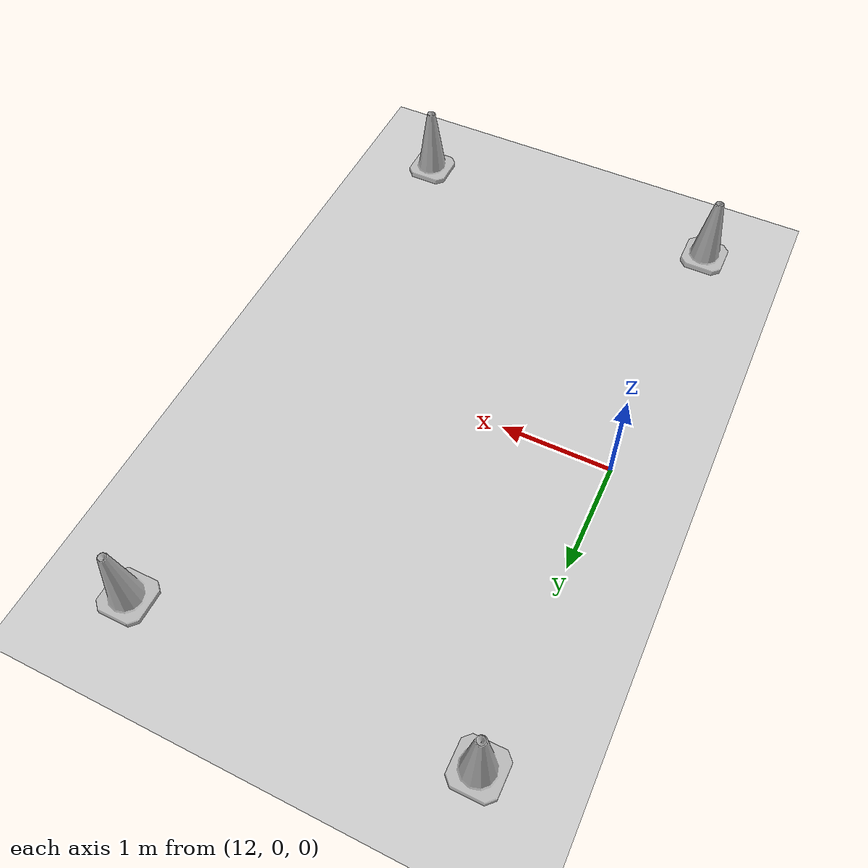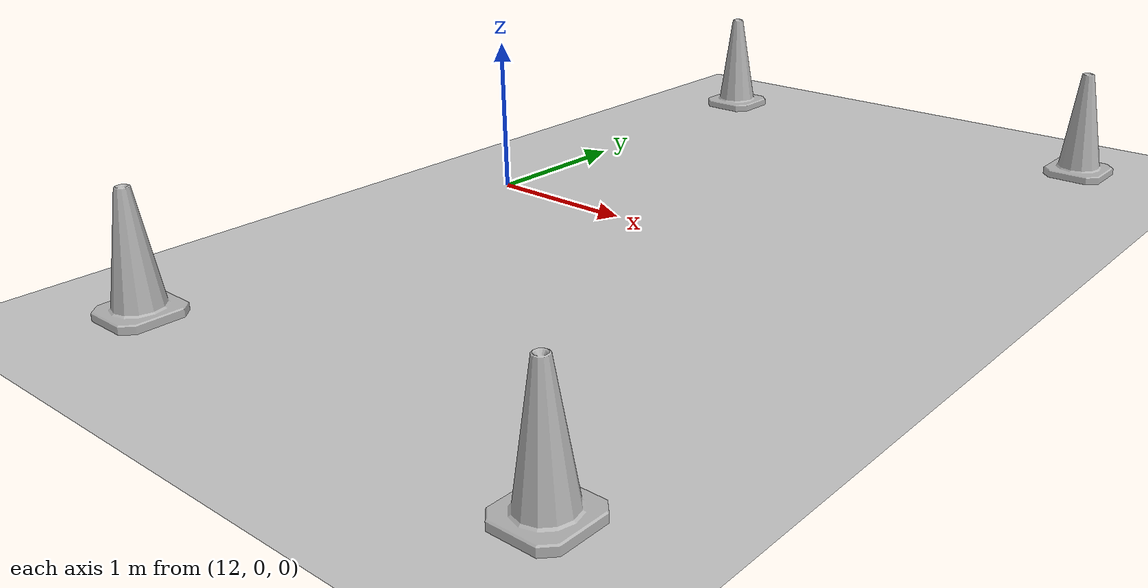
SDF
<sdf version="1.7">
 <world name="default">
  <model name="ground_plane">
   <static>1</static>
   <link name="link">
    <collision name="collision">
     <geometry><plane><normal>0 0 1</normal><size>100 100</size></plane></geometry>
     <surface>
      <contact><collide_bitmask>65535</collide_bitmask></contact>
      <friction><ode><mu>100</mu><mu2>50</mu2></ode></friction>
     </surface>
    </collision>
    <visual name="visual">
     <cast_shadows>0</cast_shadows>
     <geometry><plane><normal>0 0 1</normal><size>100 100</size></plane></geometry>
     <material>
      <script><uri>file://media/materials/scripts/gazebo.material</uri><name>Gazebo/Grey</name></script>
     </material>
    </visual>
   </link>
  </model>
  <model name="Construction_Cone_b_3">
   <link name="link">
    <inertial>
     <inertia><ixx>1</ixx><ixy>0</ixy><ixz>0</ixz><iyy>1</iyy><iyz>0</iyz><izz>1</izz></inertia>
     <mass>1</mass>
    </inertial>
    <visual name="visual">
     <geometry>
      <mesh><scale>8 8 6.7</scale><uri>./construction_cone/meshes/construction_cone_b.dae</uri></mesh>
     </geometry>
     <material><shader type="pixel"/></material>
    </visual>
    <collision name="collision">
     <geometry>
      <mesh><uri>./construction_cone/meshes/construction_cone_b.dae</uri><scale>8 8 6.7</scale></mesh>
     </geometry>
     <surface>
      <friction>
       <ode><mu>1</mu><mu2>1</mu2><fdir1>0 0 0</fdir1><slip1>0</slip1><slip2>0</slip2></ode>
       <torsional>
        <coefficient>1</coefficient>
        <patch_radius>0</patch_radius>
        <surface_radius>0</surface_radius>
        <use_patch_radius>1</use_patch_radius>
        <ode><slip>0</slip></ode>
       </torsional>
      </friction>
      <bounce><restitution_coefficient>0</restitution_coefficient><threshold>1e+06</threshold></bounce>
      <contact>
       <collide_without_contact>0</collide_without_contact>
       <collide_without_contact_bitmask>1</collide_without_contact_bitmask>
       <collide_bitmask>1</collide_bitmask>
       <ode>
        <soft_cfm>0</soft_cfm>
        <soft_erp>0.2</soft_erp>
        <kp>1e+13</kp>
        <kd>1</kd>
        <max_vel>0.01</max_vel>
        <min_depth>0</min_depth>
       </ode>
       <bullet>
        <split_impulse>1</split_impulse>
        <split_impulse_penetration_threshold>-0.01</split_impulse_penetration_threshold>
        <soft_cfm>0</soft_cfm>
        <soft_erp>0.2</soft_erp>
        <kp>1e+13</kp>
        <kd>1</kd>
       </bullet>
      </contact>
     </surface>
    </collision>
   </link>
   <static>0</static>
   <pose>11.9994 -2.70125 -0 0 -0 0</pose>
  </model>
  <model name="Construction_Cone_b_4">
   <link name="link">
    <inertial>
     <inertia><ixx>1</ixx><ixy>0</ixy><ixz>0</ixz><iyy>1</iyy><iyz>0</iyz><izz>1</izz></inertia>
     <mass>1</mass>
    </inertial>
    <visual name="visual">
     <geometry>
      <mesh><scale>8 8 6.7</scale><uri>./construction_cone/meshes/construction_cone_b.dae</uri></mesh>
     </geometry>
     <material><shader type="pixel"/></material>
    </visual>
    <collision name="collision">
     <geometry>
      <mesh><uri>./construction_cone/meshes/construction_cone_b.dae</uri><scale>8 8 6.7</scale></mesh>
     </geometry>
     <surface>
      <friction>
       <ode><mu>1</mu><mu2>1</mu2><fdir1>0 0 0</fdir1><slip1>0</slip1><slip2>0</slip2></ode>
       <torsional>
        <coefficient>1</coefficient>
        <patch_radius>0</patch_radius>
        <surface_radius>0</surface_radius>
        <use_patch_radius>1</use_patch_radius>
        <ode><slip>0</slip></ode>
       </torsional>
      </friction>
      <bounce><restitution_coefficient>0</restitution_coefficient><threshold>1e+06</threshold></bounce>
      <contact>
       <collide_without_contact>0</collide_without_contact>
       <collide_without_contact_bitmask>1</collide_without_contact_bitmask>
       <collide_bitmask>1</collide_bitmask>
       <ode>
        <soft_cfm>0</soft_cfm>
        <soft_erp>0.2</soft_erp>
        <kp>1e+13</kp>
        <kd>1</kd>
        <max_vel>0.01</max_vel>
        <min_depth>0</min_depth>
       </ode>
       <bullet>
        <split_impulse>1</split_impulse>
        <split_impulse_penetration_threshold>-0.01</split_impulse_penetration_threshold>
        <soft_cfm>0</soft_cfm>
        <soft_erp>0.2</soft_erp>
        <kp>1e+13</kp>
        <kd>1</kd>
       </bullet>
      </contact>
     </surface>
    </collision>
   </link>
   <static>0</static>
   <pose>15 -2.70067 -0 0 -0 0</pose>
  </model>
  <model name="Construction_Cone_y_3">
   <link name="link">
    <inertial>
     <inertia><ixx>1</ixx><ixy>0</ixy><ixz>0</ixz><iyy>1</iyy><iyz>0</iyz><izz>1</izz></inertia>
     <mass>1</mass>
    </inertial>
    <visual name="visual">
     <geometry>
      <mesh><scale>8 8 6.7</scale><uri>./construction_cone/meshes/construction_cone_y.dae</uri></mesh>
     </geometry>
     <material><shader type="pixel"/></material>
    </visual>
    <collision name="collision">
     <geometry>
      <mesh><uri>./construction_cone/meshes/construction_cone_y.dae</uri><scale>8 8 6.7</scale></mesh>
     </geometry>
     <surface>
      <friction>
       <ode><mu>1</mu><mu2>1</mu2><fdir1>0 0 0</fdir1><slip1>0</slip1><slip2>0</slip2></ode>
       <torsional>
        <coefficient>1</coefficient>
        <patch_radius>0</patch_radius>
        <surface_radius>0</surface_radius>
        <use_patch_radius>1</use_patch_radius>
        <ode><slip>0</slip></ode>
       </torsional>
      </friction>
      <bounce><restitution_coefficient>0</restitution_coefficient><threshold>1e+06</threshold></bounce>
      <contact>
       <collide_without_contact>0</collide_without_contact>
       <collide_without_contact_bitmask>1</collide_without_contact_bitmask>
       <collide_bitmask>1</collide_bitmask>
       <ode>
        <soft_cfm>0</soft_cfm>
        <soft_erp>0.2</soft_erp>
        <kp>1e+13</kp>
        <kd>1</kd>
        <max_vel>0.01</max_vel>
        <min_depth>0</min_depth>
       </ode>
       <bullet>
        <split_impulse>1</split_impulse>
        <split_impulse_penetration_threshold>-0.01</split_impulse_penetration_threshold>
        <soft_cfm>0</soft_cfm>
        <soft_erp>0.2</soft_erp>
        <kp>1e+13</kp>
        <kd>1</kd>
       </bullet>
      </contact>
     </surface>
    </collision>
   </link>
   <static>0</static>
   <pose>11.9993 2.70175 -0 0 -0 0</pose>
  </model>
  <model name="Construction_Cone_y_4">
   <link name="link">
    <inertial>
     <inertia><ixx>1</ixx><ixy>0</ixy><ixz>0</ixz><iyy>1</iyy><iyz>0</iyz><izz>1</izz></inertia>
     <mass>1</mass>
    </inertial>
    <visual name="visual">
     <geometry>
      <mesh><scale>8 8 6.7</scale><uri>./construction_cone/meshes/construction_cone_y.dae</uri></mesh>
     </geometry>
     <material><shader type="pixel"/></material>
    </visual>
    <collision name="collision">
     <geometry>
      <mesh><uri>./construction_cone/meshes/construction_cone_y.dae</uri><scale>8 8 6.7</scale></mesh>
     </geometry>
     <surface>
      <friction>
       <ode><mu>1</mu><mu2>1</mu2><fdir1>0 0 0</fdir1><slip1>0</slip1><slip2>0</slip2></ode>
       <torsional>
        <coefficient>1</coefficient>
        <patch_radius>0</patch_radius>
        <surface_radius>0</surface_radius>
        <use_patch_radius>1</use_patch_radius>
        <ode><slip>0</slip></ode>
       </torsional>
      </friction>
      <bounce><restitution_coefficient>0</restitution_coefficient><threshold>1e+06</threshold></bounce>
      <contact>
       <collide_without_contact>0</collide_without_contact>
       <collide_without_contact_bitmask>1</collide_without_contact_bitmask>
       <collide_bitmask>1</collide_bitmask>
       <ode>
        <soft_cfm>0</soft_cfm>
        <soft_erp>0.2</soft_erp>
        <kp>1e+13</kp>
        <kd>1</kd>
        <max_vel>0.01</max_vel>
        <min_depth>0</min_depth>
       </ode>
       <bullet>
        <split_impulse>1</split_impulse>
        <split_impulse_penetration_threshold>-0.01</split_impulse_penetration_threshold>
        <soft_cfm>0</soft_cfm>
        <soft_erp>0.2</soft_erp>
        <kp>1e+13</kp>
        <kd>1</kd>
       </bullet>
      </contact>
     </surface>
    </collision>
   </link>
   <static>0</static>
   <pose>14.9997 2.70084 -0 0 -0 0</pose>
  </model>
 </world>
</sdf>
